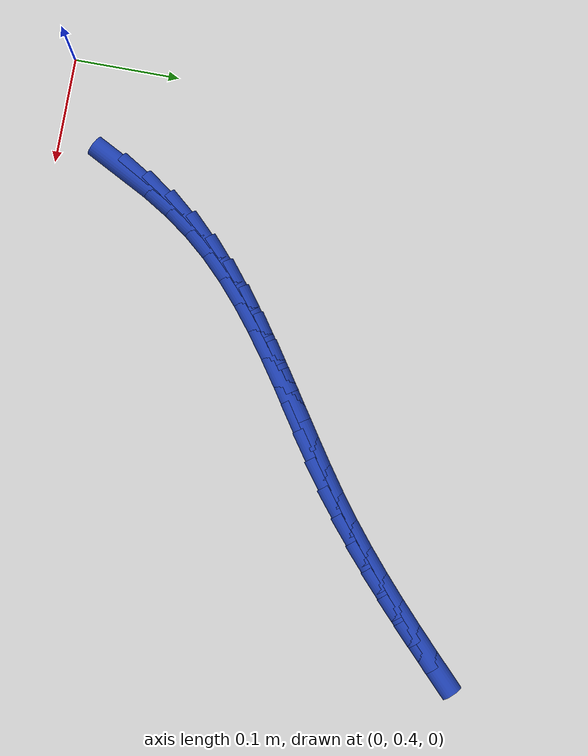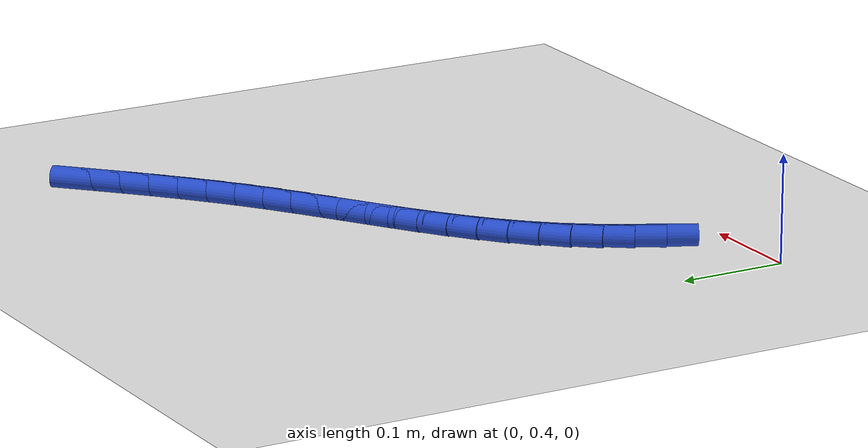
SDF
<sdf version="1.6">
 <world name="default">
  <model name="ground_plane">
   <static>1</static>
   <link name="link">
    <collision name="collision">
     <geometry><plane><normal>0 0 1</normal><size>100 100</size></plane></geometry>
     <surface><friction><ode><mu>100</mu><mu2>50</mu2></ode></friction></surface>
    </collision>
    <visual name="visual">
     <cast_shadows>0</cast_shadows>
     <geometry><plane><normal>0 0 1</normal><size>100 100</size></plane></geometry>
     <material>
      <script><uri>file://media/materials/scripts/gazebo.material</uri><name>Gazebo/WhiteGlow</name></script>
     </material>
    </visual>
   </link>
  </model>
  <model name="line">
   <link name="link_17">
    <pose>0.09855530744605703 0.4704598224220922 0.01 0 1.57 1.090216797764186</pose>
    <collision name="collision">
     <geometry><cylinder><radius>0.01</radius><length>0.08</length></cylinder></geometry>
    </collision>
    <visual name="visual">
     <material>
      <script><name>Gazebo/Blue</name><uri>file://media/materials/scripts/gazebo.material</uri></script>
     </material>
     <geometry><cylinder><radius>0.01</radius><length>0.08</length></cylinder></geometry>
    </visual>
   </link>
   <link name="link_18">
    <pose>0.11139722805022492 0.4950919851354805 0.01 0 1.57 1.0234716447444159</pose>
    <collision name="collision">
     <geometry><cylinder><radius>0.01</radius><length>0.08</length></cylinder></geometry>
    </collision>
    <visual name="visual">
     <material>
      <script><name>Gazebo/Blue</name><uri>file://media/materials/scripts/gazebo.material</uri></script>
     </material>
     <geometry><cylinder><radius>0.01</radius><length>0.08</length></cylinder></geometry>
    </visual>
   </link>
   <link name="link_19">
    <pose>0.1257202366384209 0.5185942779269047 0.01 0 1.57 0.9484567504262988</pose>
    <collision name="collision">
     <geometry><cylinder><radius>0.01</radius><length>0.08</length></cylinder></geometry>
    </collision>
    <visual name="visual">
     <material>
      <script><name>Gazebo/Blue</name><uri>file://media/materials/scripts/gazebo.material</uri></script>
     </material>
     <geometry><cylinder><radius>0.01</radius><length>0.08</length></cylinder></geometry>
    </visual>
   </link>
   <link name="link_20">
    <pose>0.14166418271846182 0.540817450193159 0.01 0 1.57 0.8661796204796266</pose>
    <collision name="collision">
     <geometry><cylinder><radius>0.01</radius><length>0.08</length></cylinder></geometry>
    </collision>
    <visual name="visual">
     <material>
      <script><name>Gazebo/Blue</name><uri>file://media/materials/scripts/gazebo.material</uri></script>
     </material>
     <geometry><cylinder><radius>0.01</radius><length>0.08</length></cylinder></geometry>
    </visual>
   </link>
   <link name="link_21">
    <pose>0.15935500156376364 0.5616250063938173 0.01 0 1.57 0.7880120003795564</pose>
    <collision name="collision">
     <geometry><cylinder><radius>0.01</radius><length>0.08</length></cylinder></geometry>
    </collision>
    <visual name="visual">
     <material>
      <script><name>Gazebo/Blue</name><uri>file://media/materials/scripts/gazebo.material</uri></script>
     </material>
     <geometry><cylinder><radius>0.01</radius><length>0.08</length></cylinder></geometry>
    </visual>
   </link>
   <link name="link_22">
    <pose>0.1787049254737833 0.5810763507246908 0.01 0 1.57 0.7228630505072533</pose>
    <collision name="collision">
     <geometry><cylinder><radius>0.01</radius><length>0.08</length></cylinder></geometry>
    </collision>
    <visual name="visual">
     <material>
      <script><name>Gazebo/Blue</name><uri>file://media/materials/scripts/gazebo.material</uri></script>
     </material>
     <geometry><cylinder><radius>0.01</radius><length>0.08</length></cylinder></geometry>
    </visual>
   </link>
   <link name="link_23">
    <pose>0.19945881610301686 0.5993843146577486 0.01 0 1.57 0.6709122858588802</pose>
    <collision name="collision">
     <geometry><cylinder><radius>0.01</radius><length>0.08</length></cylinder></geometry>
    </collision>
    <visual name="visual">
     <material>
      <script><name>Gazebo/Blue</name><uri>file://media/materials/scripts/gazebo.material</uri></script>
     </material>
     <geometry><cylinder><radius>0.01</radius><length>0.08</length></cylinder></geometry>
    </visual>
   </link>
   <link name="link_24">
    <pose>0.22135706115880383 0.616765830895054 0.01 0 1.57 0.6317341656293107</pose>
    <collision name="collision">
     <geometry><cylinder><radius>0.01</radius><length>0.08</length></cylinder></geometry>
    </collision>
    <visual name="visual">
     <material>
      <script><name>Gazebo/Blue</name><uri>file://media/materials/scripts/gazebo.material</uri></script>
     </material>
     <geometry><cylinder><radius>0.01</radius><length>0.08</length></cylinder></geometry>
    </visual>
   </link>
   <link name="link_25">
    <pose>0.24414004834848338 0.6334378321386702 0.01 0 1.57 0.604787625428781</pose>
    <collision name="collision">
     <geometry><cylinder><radius>0.01</radius><length>0.08</length></cylinder></geometry>
    </collision>
    <visual name="visual">
     <material>
      <script><name>Gazebo/Blue</name><uri>file://media/materials/scripts/gazebo.material</uri></script>
     </material>
     <geometry><cylinder><radius>0.01</radius><length>0.08</length></cylinder></geometry>
    </visual>
   </link>
   <link name="link_26">
    <pose>0.267548165379395 0.6496172510906605 0.01 0 1.57 0.5895932296256344</pose>
    <collision name="collision">
     <geometry><cylinder><radius>0.01</radius><length>0.08</length></cylinder></geometry>
    </collision>
    <visual name="visual">
     <material>
      <script><name>Gazebo/Blue</name><uri>file://media/materials/scripts/gazebo.material</uri></script>
     </material>
     <geometry><cylinder><radius>0.01</radius><length>0.08</length></cylinder></geometry>
    </visual>
   </link>
   <link name="link_27">
    <pose>0.29132179995887814 0.6655210204530883 0.01 0 1.57 0.5858355208060515</pose>
    <collision name="collision">
     <geometry><cylinder><radius>0.01</radius><length>0.08</length></cylinder></geometry>
    </collision>
    <visual name="visual">
     <material>
      <script><name>Gazebo/Blue</name><uri>file://media/materials/scripts/gazebo.material</uri></script>
     </material>
     <geometry><cylinder><radius>0.01</radius><length>0.08</length></cylinder></geometry>
    </visual>
   </link>
   <link name="link_28">
    <pose>0.3152013397942721 0.6813660729280165 0.01 0 1.57 0.5934117138607911</pose>
    <collision name="collision">
     <geometry><cylinder><radius>0.01</radius><length>0.08</length></cylinder></geometry>
    </collision>
    <visual name="visual">
     <material>
      <script><name>Gazebo/Blue</name><uri>file://media/materials/scripts/gazebo.material</uri></script>
     </material>
     <geometry><cylinder><radius>0.01</radius><length>0.08</length></cylinder></geometry>
    </visual>
   </link>
   <link name="link_29">
    <pose>0.3389271725929164 0.6973693412175087 0.01 0 1.57 0.6124413689381945</pose>
    <collision name="collision">
     <geometry><cylinder><radius>0.01</radius><length>0.08</length></cylinder></geometry>
    </collision>
    <visual name="visual">
     <material>
      <script><name>Gazebo/Blue</name><uri>file://media/materials/scripts/gazebo.material</uri></script>
     </material>
     <geometry><cylinder><radius>0.01</radius><length>0.08</length></cylinder></geometry>
    </visual>
   </link>
   <link name="link_30">
    <pose>0.3622396860621504 0.7137477580236282 0.01 0 1.57 0.6428053758617741</pose>
    <collision name="collision">
     <geometry><cylinder><radius>0.01</radius><length>0.08</length></cylinder></geometry>
    </collision>
    <visual name="visual">
     <material>
      <script><name>Gazebo/Blue</name><uri>file://media/materials/scripts/gazebo.material</uri></script>
     </material>
     <geometry><cylinder><radius>0.01</radius><length>0.08</length></cylinder></geometry>
    </visual>
   </link>
   <link name="link_31">
    <pose>0.3848891939982709 0.7307102799243784 0.01 0 1.57 0.6764550343311281</pose>
    <collision name="collision">
     <geometry><cylinder><radius>0.01</radius><length>0.08</length></cylinder></geometry>
    </collision>
    <visual name="visual">
     <material>
      <script><name>Gazebo/Blue</name><uri>file://media/materials/scripts/gazebo.material</uri></script>
     </material>
     <geometry><cylinder><radius>0.01</radius><length>0.08</length></cylinder></geometry>
    </visual>
   </link>
   <link name="link_32">
    <pose>0.4068158436141124 0.7483133225637193 0.01 0 1.57 0.7057310922594642</pose>
    <collision name="collision">
     <geometry><cylinder><radius>0.01</radius><length>0.08</length></cylinder></geometry>
    </collision>
    <visual name="visual">
     <material>
      <script><name>Gazebo/Blue</name><uri>file://media/materials/scripts/gazebo.material</uri></script>
     </material>
     <geometry><cylinder><radius>0.01</radius><length>0.08</length></cylinder></geometry>
    </visual>
   </link>
   <link name="link_33">
    <pose>0.42813042498137377 0.7664761812537211 0.01 0 1.57 0.7301456920130951</pose>
    <collision name="collision">
     <geometry><cylinder><radius>0.01</radius><length>0.08</length></cylinder></geometry>
    </collision>
    <visual name="visual">
     <material>
      <script><name>Gazebo/Blue</name><uri>file://media/materials/scripts/gazebo.material</uri></script>
     </material>
     <geometry><cylinder><radius>0.01</radius><length>0.08</length></cylinder></geometry>
    </visual>
   </link>
   <link name="link_34">
    <pose>0.4489498024783617 0.7851132702880308 0.01 0 1.57 0.7495528673973274</pose>
    <collision name="collision">
     <geometry><cylinder><radius>0.01</radius><length>0.08</length></cylinder></geometry>
    </collision>
    <visual name="visual">
     <material>
      <script><name>Gazebo/Blue</name><uri>file://media/materials/scripts/gazebo.material</uri></script>
     </material>
     <geometry><cylinder><radius>0.01</radius><length>0.08</length></cylinder></geometry>
    </visual>
   </link>
   <link name="link_35">
    <pose>0.46939084048338303 0.8041390039602956 0.01 0 1.57 0.7638675577884524</pose>
    <collision name="collision">
     <geometry><cylinder><radius>0.01</radius><length>0.08</length></cylinder></geometry>
    </collision>
    <visual name="visual">
     <material>
      <script><name>Gazebo/Blue</name><uri>file://media/materials/scripts/gazebo.material</uri></script>
     </material>
     <geometry><cylinder><radius>0.01</radius><length>0.08</length></cylinder></geometry>
    </visual>
   </link>
   <link name="link_36">
    <pose>0.4895704033747442 0.8234677965641624 0.01 0 1.57 0.7730523710438469</pose>
    <collision name="collision">
     <geometry><cylinder><radius>0.01</radius><length>0.08</length></cylinder></geometry>
    </collision>
    <visual name="visual">
     <material>
      <script><name>Gazebo/Blue</name><uri>file://media/materials/scripts/gazebo.material</uri></script>
     </material>
     <geometry><cylinder><radius>0.01</radius><length>0.08</length></cylinder></geometry>
    </visual>
   </link>
  </model>
 </world>
</sdf>
